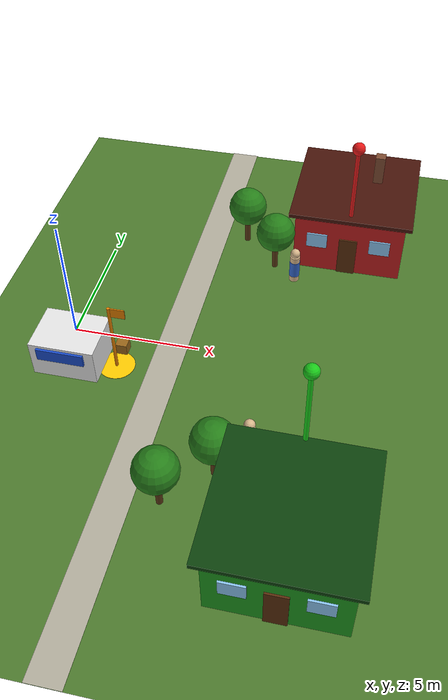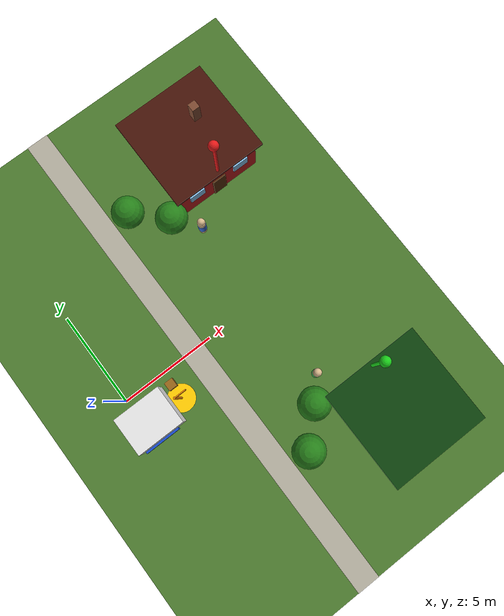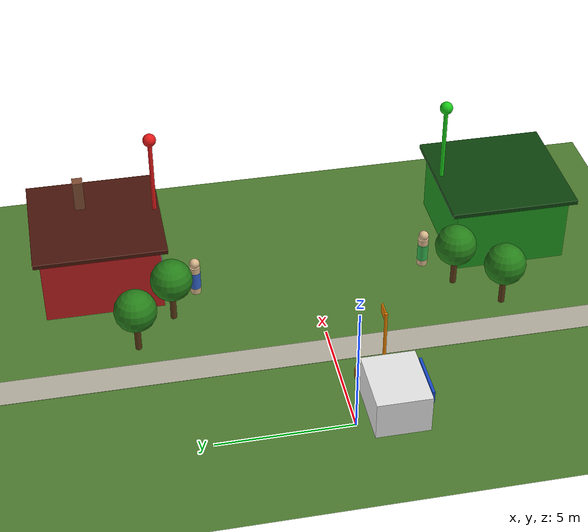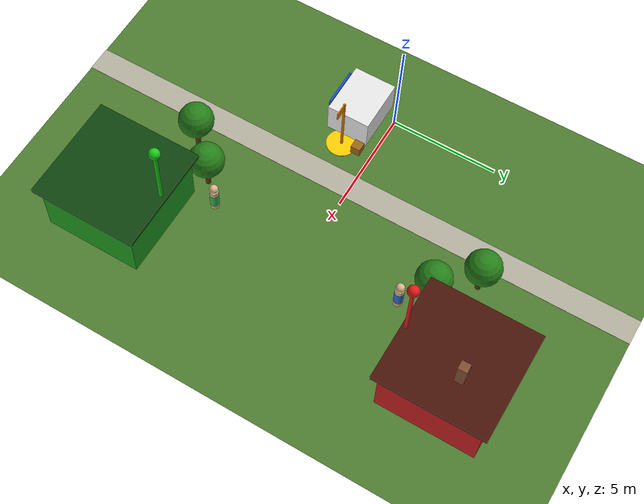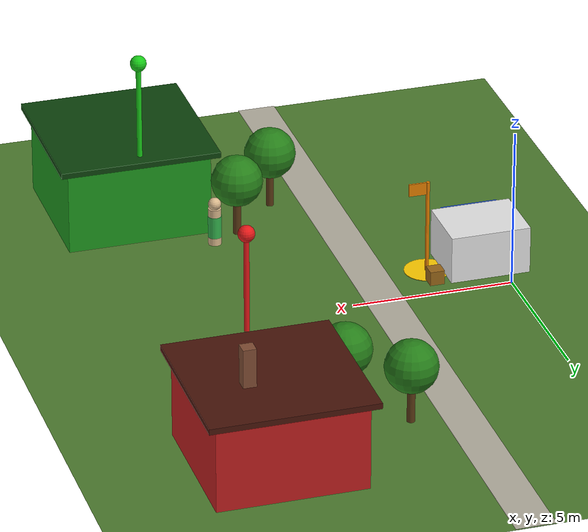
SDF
<sdf version="1.8">
 <world name="neighborhood">
  <model name="ground_plane">
   <static>true</static>
   <link name="link">
    <collision name="c"><geometry><plane><normal>0 0 1</normal><size>200 200</size></plane></geometry></collision>
    <visual name="v">
     <geometry><plane><normal>0 0 1</normal><size>200 200</size></plane></geometry>
     <material><ambient>0.3 0.48 0.18 1</ambient><diffuse>0.3 0.48 0.18 1</diffuse></material>
    </visual>
   </link>
  </model>
  <model name="sidewalk_ve">
   <static>true</static>
   <pose>4.0 0 0.006 0 0 0</pose>
   <link name="link">
    <visual name="v">
     <geometry><box><size>1.2 60 0.01</size></box></geometry>
     <material><ambient>0.7 0.68 0.62 1</ambient><diffuse>0.7 0.68 0.62 1</diffuse></material>
    </visual>
    <collision name="c"><geometry><box><size>1.2 60 0.01</size></box></geometry></collision>
   </link>
  </model>
  <model name="depot">
   <static>true</static>
   <pose>0.5 -1.5 0 0 0 0</pose>
   <link name="base">
    <pose>0 0 0.75 0 0 0</pose>
    <visual name="v">
     <geometry><box><size>2.5 2.0 1.5</size></box></geometry>
     <material><ambient>0.9 0.9 0.9 1</ambient><diffuse>0.9 0.9 0.9 1</diffuse></material>
    </visual>
   </link>
   <link name="sign">
    <pose>0 -1.1 1.2 0 0 0</pose>
    <visual name="v">
     <geometry><box><size>1.8 0.1 0.5</size></box></geometry>
     <material><ambient>0.1 0.3 0.8 1</ambient><diffuse>0.1 0.3 0.8 1</diffuse></material>
    </visual>
   </link>
  </model>
  <model name="parcel_marker">
   <static>true</static>
   <pose>2.2 -1.5 0 0 0 0</pose>
   <link name="post">
    <pose>0 0 1.5 0 0 0</pose>
    <visual name="v">
     <geometry><cylinder><radius>0.06</radius><length>3.0</length></cylinder></geometry>
     <material><ambient>0.9 0.5 0.0 1</ambient><diffuse>0.9 0.5 0.0 1</diffuse></material>
    </visual>
   </link>
   <link name="flag">
    <pose>0.3 0 2.8 0 0 0</pose>
    <visual name="v">
     <geometry><box><size>0.6 0.05 0.4</size></box></geometry>
     <material><ambient>0.9 0.5 0.0 1</ambient><diffuse>0.9 0.5 0.0 1</diffuse></material>
    </visual>
   </link>
   <link name="parcel_box">
    <pose>0 0.8 0.25 0 0 0</pose>
    <visual name="v">
     <geometry><box><size>0.45 0.45 0.45</size></box></geometry>
     <material><ambient>0.6 0.4 0.1 1</ambient><diffuse>0.6 0.4 0.1 1</diffuse></material>
    </visual>
    <collision name="c"><geometry><box><size>0.45 0.45 0.45</size></box></geometry></collision>
   </link>
   <link name="pickup_pad">
    <pose>0 0 0.01 0 0 0</pose>
    <visual name="v">
     <geometry><cylinder><radius>0.7</radius><length>0.02</length></cylinder></geometry>
     <material><ambient>1.0 0.8 0.0 1</ambient><diffuse>1.0 0.8 0.0 1</diffuse></material>
    </visual>
   </link>
  </model>
  <model name="house_red">
   <static>true</static>
   <pose>10 8 0 0 0 0</pose>
   <link name="walls">
    <pose>0 0 1.3 0 0 0</pose>
    <visual name="v">
     <geometry><box><size>4.5 4.5 2.6</size></box></geometry>
     <material><ambient>0.75 0.12 0.12 1</ambient><diffuse>0.75 0.12 0.12 1</diffuse></material>
    </visual>
    <collision name="c"><geometry><box><size>4.5 4.5 2.6</size></box></geometry></collision>
   </link>
   <link name="roof">
    <pose>0 0 2.75 0 0 0</pose>
    <visual name="v">
     <geometry><box><size>5.0 5.0 0.18</size></box></geometry>
     <material><ambient>0.28 0.08 0.04 1</ambient><diffuse>0.28 0.08 0.04 1</diffuse></material>
    </visual>
   </link>
   <link name="chimney">
    <pose>0.8 0.5 3.5 0 0 0</pose>
    <visual name="v">
     <geometry><box><size>0.4 0.4 1.2</size></box></geometry>
     <material><ambient>0.5 0.3 0.2 1</ambient><diffuse>0.5 0.3 0.2 1</diffuse></material>
    </visual>
   </link>
   <link name="door">
    <pose>0 -2.28 0.85 0 0 0</pose>
    <visual name="v">
     <geometry><box><size>0.75 0.08 1.7</size></box></geometry>
     <material><ambient>0.35 0.18 0.05 1</ambient><diffuse>0.35 0.18 0.05 1</diffuse></material>
    </visual>
   </link>
   <link name="win_l">
    <pose>-1.3 -2.28 1.5 0 0 0</pose>
    <visual name="v">
     <geometry><box><size>0.85 0.08 0.65</size></box></geometry>
     <material><ambient>0.55 0.78 0.95 1</ambient><diffuse>0.55 0.78 0.95 1</diffuse></material>
    </visual>
   </link>
   <link name="win_r">
    <pose>1.3 -2.28 1.5 0 0 0</pose>
    <visual name="v">
     <geometry><box><size>0.85 0.08 0.65</size></box></geometry>
     <material><ambient>0.55 0.78 0.95 1</ambient><diffuse>0.55 0.78 0.95 1</diffuse></material>
    </visual>
   </link>
  </model>
  <model name="house_green">
   <static>true</static>
   <pose>10 -8 0 0 0 0</pose>
   <link name="walls">
    <pose>0 0 1.3 0 0 0</pose>
    <visual name="v">
     <geometry><box><size>4.5 4.5 2.6</size></box></geometry>
     <material><ambient>0.12 0.6 0.12 1</ambient><diffuse>0.12 0.6 0.12 1</diffuse></material>
    </visual>
    <collision name="c"><geometry><box><size>4.5 4.5 2.6</size></box></geometry></collision>
   </link>
   <link name="roof">
    <pose>0 0 2.75 0 0 0</pose>
    <visual name="v">
     <geometry><box><size>5.0 5.0 0.18</size></box></geometry>
     <material><ambient>0.05 0.26 0.05 1</ambient><diffuse>0.05 0.26 0.05 1</diffuse></material>
    </visual>
   </link>
   <link name="door">
    <pose>0 -2.28 0.85 0 0 0</pose>
    <visual name="v">
     <geometry><box><size>0.75 0.08 1.7</size></box></geometry>
     <material><ambient>0.35 0.18 0.05 1</ambient><diffuse>0.35 0.18 0.05 1</diffuse></material>
    </visual>
   </link>
   <link name="win_l">
    <pose>-1.3 -2.28 1.5 0 0 0</pose>
    <visual name="v">
     <geometry><box><size>0.85 0.08 0.65</size></box></geometry>
     <material><ambient>0.55 0.78 0.95 1</ambient><diffuse>0.55 0.78 0.95 1</diffuse></material>
    </visual>
   </link>
   <link name="win_r">
    <pose>1.3 -2.28 1.5 0 0 0</pose>
    <visual name="v">
     <geometry><box><size>0.85 0.08 0.65</size></box></geometry>
     <material><ambient>0.55 0.78 0.95 1</ambient><diffuse>0.55 0.78 0.95 1</diffuse></material>
    </visual>
   </link>
  </model>
  <model name="marker_red">
   <static>true</static>
   <pose>10 5.7 0 0 0 0</pose>
   <link name="pole">
    <pose>0 0 4.5 0 0 0</pose>
    <visual name="v">
     <geometry><cylinder><radius>0.08</radius><length>3.0</length></cylinder></geometry>
     <material><ambient>0.9 0.1 0.1 1</ambient><diffuse>0.9 0.1 0.1 1</diffuse></material>
    </visual>
   </link>
   <link name="ball">
    <pose>0 0 6.1 0 0 0</pose>
    <visual name="v">
     <geometry><sphere><radius>0.25</radius></sphere></geometry>
     <material><ambient>0.9 0.1 0.1 1</ambient><diffuse>0.9 0.1 0.1 1</diffuse></material>
    </visual>
   </link>
  </model>
  <model name="marker_green">
   <static>true</static>
   <pose>10 -5.7 0 0 0 0</pose>
   <link name="pole">
    <pose>0 0 4.5 0 0 0</pose>
    <visual name="v">
     <geometry><cylinder><radius>0.08</radius><length>3.0</length></cylinder></geometry>
     <material><ambient>0.1 0.8 0.1 1</ambient><diffuse>0.1 0.8 0.1 1</diffuse></material>
    </visual>
   </link>
   <link name="ball">
    <pose>0 0 6.1 0 0 0</pose>
    <visual name="v">
     <geometry><sphere><radius>0.25</radius></sphere></geometry>
     <material><ambient>0.1 0.8 0.1 1</ambient><diffuse>0.1 0.8 0.1 1</diffuse></material>
    </visual>
   </link>
  </model>
  <model name="tree_1">
   <static>true</static>
   <pose>7 5.5 0 0 0 0</pose>
   <link name="trunk">
    <pose>0 0 0.6 0 0 0</pose>
    <visual name="v">
     <geometry><cylinder><radius>0.12</radius><length>1.2</length></cylinder></geometry>
     <material><ambient>0.35 0.22 0.08 1</ambient><diffuse>0.35 0.22 0.08 1</diffuse></material>
    </visual>
    <collision name="c">
     <geometry><cylinder><radius>0.12</radius><length>1.2</length></cylinder></geometry>
    </collision>
   </link>
   <link name="canopy">
    <pose>0 0 1.8 0 0 0</pose>
    <visual name="v">
     <geometry><sphere><radius>0.8</radius></sphere></geometry>
     <material><ambient>0.15 0.5 0.1 1</ambient><diffuse>0.15 0.5 0.1 1</diffuse></material>
    </visual>
   </link>
  </model>
  <model name="tree_3">
   <static>true</static>
   <pose>7 -5.5 0 0 0 0</pose>
   <link name="trunk">
    <pose>0 0 0.6 0 0 0</pose>
    <visual name="v">
     <geometry><cylinder><radius>0.12</radius><length>1.2</length></cylinder></geometry>
     <material><ambient>0.35 0.22 0.08 1</ambient><diffuse>0.35 0.22 0.08 1</diffuse></material>
    </visual>
    <collision name="c">
     <geometry><cylinder><radius>0.12</radius><length>1.2</length></cylinder></geometry>
    </collision>
   </link>
   <link name="canopy">
    <pose>0 0 1.8 0 0 0</pose>
    <visual name="v">
     <geometry><sphere><radius>0.8</radius></sphere></geometry>
     <material><ambient>0.15 0.5 0.1 1</ambient><diffuse>0.15 0.5 0.1 1</diffuse></material>
    </visual>
   </link>
  </model>
  <model name="tree_5">
   <static>true</static>
   <pose>5.5 7 0 0 0 0</pose>
   <link name="trunk">
    <pose>0 0 0.6 0 0 0</pose>
    <visual name="v">
     <geometry><cylinder><radius>0.12</radius><length>1.2</length></cylinder></geometry>
     <material><ambient>0.35 0.22 0.08 1</ambient><diffuse>0.35 0.22 0.08 1</diffuse></material>
    </visual>
    <collision name="c">
     <geometry><cylinder><radius>0.12</radius><length>1.2</length></cylinder></geometry>
    </collision>
   </link>
   <link name="canopy">
    <pose>0 0 1.8 0 0 0</pose>
    <visual name="v">
     <geometry><sphere><radius>0.8</radius></sphere></geometry>
     <material><ambient>0.15 0.5 0.1 1</ambient><diffuse>0.15 0.5 0.1 1</diffuse></material>
    </visual>
   </link>
  </model>
  <model name="tree_7">
   <static>true</static>
   <pose>5.5 -7 0 0 0 0</pose>
   <link name="trunk">
    <pose>0 0 0.6 0 0 0</pose>
    <visual name="v">
     <geometry><cylinder><radius>0.12</radius><length>1.2</length></cylinder></geometry>
     <material><ambient>0.35 0.22 0.08 1</ambient><diffuse>0.35 0.22 0.08 1</diffuse></material>
    </visual>
    <collision name="c">
     <geometry><cylinder><radius>0.12</radius><length>1.2</length></cylinder></geometry>
    </collision>
   </link>
   <link name="canopy">
    <pose>0 0 1.8 0 0 0</pose>
    <visual name="v">
     <geometry><sphere><radius>0.8</radius></sphere></geometry>
     <material><ambient>0.15 0.5 0.1 1</ambient><diffuse>0.15 0.5 0.1 1</diffuse></material>
    </visual>
   </link>
  </model>
  <model name="human_1">
   <static>true</static>
   <pose>8 4.5 0 0 0 0</pose>
   <link name="body">
    <pose>0 0 0.9 0 0 0</pose>
    <visual name="v">
     <geometry><cylinder><radius>0.2</radius><length>1.2</length></cylinder></geometry>
     <material><ambient>0.85 0.72 0.55 1</ambient><diffuse>0.85 0.72 0.55 1</diffuse></material>
    </visual>
    <collision name="c">
     <geometry><cylinder><radius>0.2</radius><length>1.2</length></cylinder></geometry>
    </collision>
   </link>
   <link name="head">
    <pose>0 0 1.65 0 0 0</pose>
    <visual name="v">
     <geometry><sphere><radius>0.2</radius></sphere></geometry>
     <material><ambient>0.85 0.72 0.55 1</ambient><diffuse>0.85 0.72 0.55 1</diffuse></material>
    </visual>
   </link>
   <link name="shirt">
    <pose>0 0 0.9 0 0 0</pose>
    <visual name="v">
     <geometry><cylinder><radius>0.21</radius><length>0.7</length></cylinder></geometry>
     <material><ambient>0.2 0.4 0.8 1</ambient><diffuse>0.2 0.4 0.8 1</diffuse></material>
    </visual>
   </link>
  </model>
  <model name="human_3">
   <static>true</static>
   <pose>8 -4.5 0 0 0 0</pose>
   <link name="body">
    <pose>0 0 0.9 0 0 0</pose>
    <visual name="v">
     <geometry><cylinder><radius>0.2</radius><length>1.2</length></cylinder></geometry>
     <material><ambient>0.85 0.72 0.55 1</ambient><diffuse>0.85 0.72 0.55 1</diffuse></material>
    </visual>
    <collision name="c">
     <geometry><cylinder><radius>0.2</radius><length>1.2</length></cylinder></geometry>
    </collision>
   </link>
   <link name="head">
    <pose>0 0 1.65 0 0 0</pose>
    <visual name="v">
     <geometry><sphere><radius>0.2</radius></sphere></geometry>
     <material><ambient>0.85 0.72 0.55 1</ambient><diffuse>0.85 0.72 0.55 1</diffuse></material>
    </visual>
   </link>
   <link name="shirt">
    <pose>0 0 0.9 0 0 0</pose>
    <visual name="v">
     <geometry><cylinder><radius>0.21</radius><length>0.7</length></cylinder></geometry>
     <material><ambient>0.2 0.7 0.3 1</ambient><diffuse>0.2 0.7 0.3 1</diffuse></material>
    </visual>
   </link>
  </model>
 </world>
</sdf>
